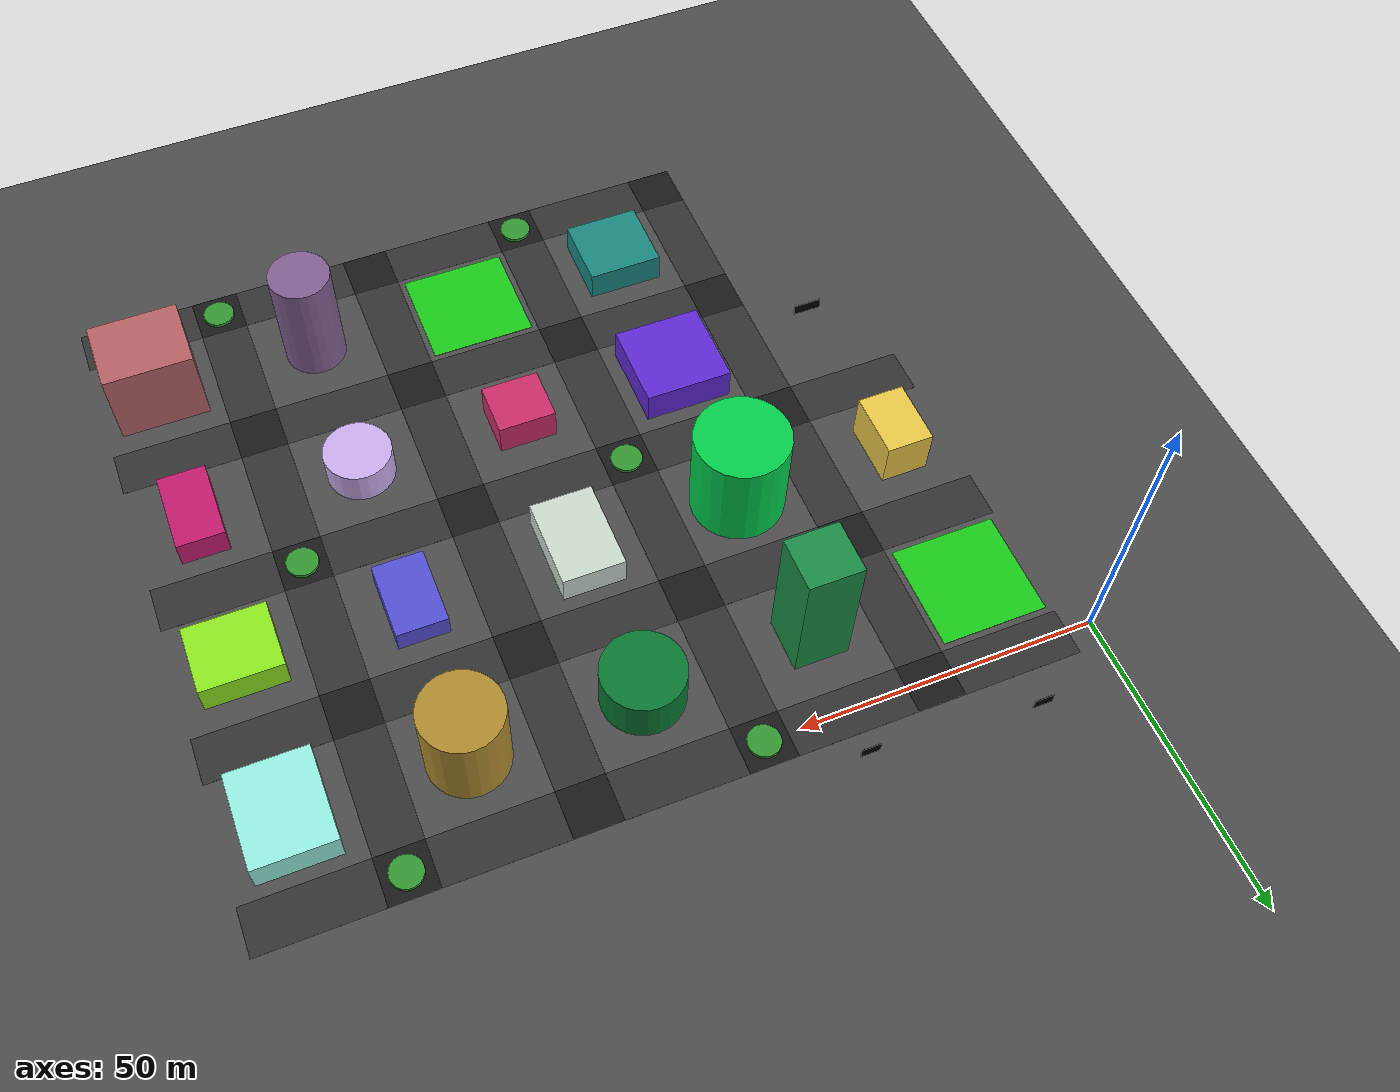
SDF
<sdf version="1.8">
 <world name="urban_city_rich">
  <model name="ground_plane">
   <static>true</static>
   <link name="link">
    <collision name="collision">
     <geometry><plane><normal>0 0 1</normal><size>200 200</size></plane></geometry>
     <surface><friction><ode><mu>100</mu><mu2>50</mu2></ode></friction></surface>
    </collision>
    <visual name="visual">
     <geometry><plane><normal>0 0 1</normal><size>200 200</size></plane></geometry>
     <material><ambient>0.3 0.3 0.3 1</ambient><diffuse>0.3 0.3 0.3 1</diffuse></material>
    </visual>
   </link>
  </model>
  <model name="door_28">
   <static>true</static>
   <pose>14.0 -74.76524444241565 1.0 0 0 0</pose>
   <link name="link">
    <visual name="vis">
     <geometry><box><size>4.9298552917714815 0.2 2.0</size></box></geometry>
     <material><ambient>0 0 0 1</ambient><diffuse>0 0 0 1</diffuse></material>
    </visual>
   </link>
  </model>
  <model name="road_h_0_-2">
   <static>true</static>
   <pose>14.0 -56.0 0.01 0 0 0</pose>
   <link name="link">
    <visual name="vis">
     <geometry><box><size>20.0 8.0 0.02</size></box></geometry>
     <material><ambient>0.2 0.2 0.2 1</ambient><diffuse>0.2 0.2 0.2 1</diffuse></material>
    </visual>
   </link>
  </model>
  <model name="bldg_29">
   <static>true</static>
   <pose>14.0 -42.0 4.146371214015269 0 0 0</pose>
   <link name="link">
    <collision name="col">
     <geometry><box><size>8.01724302681141 11.123374060702506 8.292742428030538</size></box></geometry>
    </collision>
    <visual name="vis">
     <geometry><box><size>8.01724302681141 11.123374060702506 8.292742428030538</size></box></geometry>
     <material>
      <ambient>0.9265180735593334 0.7851293567941215 0.2852492289469203 1</ambient>
      <diffuse>0.9265180735593334 0.7851293567941215 0.2852492289469203 1</diffuse>
     </material>
    </visual>
   </link>
  </model>
  <model name="door_29">
   <static>true</static>
   <pose>14.0 -47.66168703035125 1.0 0 0 0</pose>
   <link name="link">
    <visual name="vis">
     <geometry><box><size>2.67241434227047 0.2 2.0</size></box></geometry>
     <material><ambient>0 0 0 1</ambient><diffuse>0 0 0 1</diffuse></material>
    </visual>
   </link>
  </model>
  <model name="road_h_0_-1">
   <static>true</static>
   <pose>14.0 -28.0 0.01 0 0 0</pose>
   <link name="link">
    <visual name="vis">
     <geometry><box><size>20.0 8.0 0.02</size></box></geometry>
     <material><ambient>0.2 0.2 0.2 1</ambient><diffuse>0.2 0.2 0.2 1</diffuse></material>
    </visual>
   </link>
  </model>
  <model name="park_0_-1">
   <static>true</static>
   <pose>14.0 -14.0 0.05 0 0 0</pose>
   <link name="link">
    <visual name="vis">
     <geometry><box><size>18.0 18.0 0.1</size></box></geometry>
     <material><ambient>0.1 0.8 0.1 1</ambient><diffuse>0.1 0.8 0.1 1</diffuse></material>
    </visual>
   </link>
  </model>
  <model name="road_h_0_0">
   <static>true</static>
   <pose>14.0 0.0 0.01 0 0 0</pose>
   <link name="link">
    <visual name="vis">
     <geometry><box><size>20.0 8.0 0.02</size></box></geometry>
     <material><ambient>0.2 0.2 0.2 1</ambient><diffuse>0.2 0.2 0.2 1</diffuse></material>
    </visual>
   </link>
  </model>
  <model name="door_30">
   <static>true</static>
   <pose>14.0 9.666066831970802 1.0 0 0 0</pose>
   <link name="link">
    <visual name="vis">
     <geometry><box><size>3.247202395771133 0.2 2.0</size></box></geometry>
     <material><ambient>0 0 0 1</ambient><diffuse>0 0 0 1</diffuse></material>
    </visual>
   </link>
  </model>
  <model name="road_inter_1_-4">
   <static>true</static>
   <pose>28.0 -112.0 0.01 0 0 0</pose>
   <link name="link">
    <visual name="vis">
     <geometry><box><size>8.0 8.0 0.02</size></box></geometry>
     <material><ambient>0.1 0.1 0.1 1</ambient><diffuse>0.1 0.1 0.1 1</diffuse></material>
    </visual>
   </link>
  </model>
  <model name="road_h_1_-4">
   <static>true</static>
   <pose>42.0 -112.0 0.01 0 0 0</pose>
   <link name="link">
    <visual name="vis">
     <geometry><box><size>20.0 8.0 0.02</size></box></geometry>
     <material><ambient>0.2 0.2 0.2 1</ambient><diffuse>0.2 0.2 0.2 1</diffuse></material>
    </visual>
   </link>
  </model>
  <model name="road_v_1_-4">
   <static>true</static>
   <pose>28.0 -98.0 0.01 0 0 0</pose>
   <link name="link">
    <visual name="vis">
     <geometry><box><size>8.0 20.0 0.02</size></box></geometry>
     <material><ambient>0.2 0.2 0.2 1</ambient><diffuse>0.2 0.2 0.2 1</diffuse></material>
    </visual>
   </link>
  </model>
  <model name="bldg_35">
   <static>true</static>
   <pose>42.0 -98.0 2.593154568842464 0 0 0</pose>
   <link name="link">
    <collision name="col">
     <geometry><box><size>12.969274043944743 12.503949165111568 5.186309137684928</size></box></geometry>
    </collision>
    <visual name="vis">
     <geometry><box><size>12.969274043944743 12.503949165111568 5.186309137684928</size></box></geometry>
     <material>
      <ambient>0.09998124892458848 0.5376344041016273 0.5058846940487653 1</ambient>
      <diffuse>0.09998124892458848 0.5376344041016273 0.5058846940487653 1</diffuse>
     </material>
    </visual>
   </link>
  </model>
  <model name="door_35">
   <static>true</static>
   <pose>42.0 -104.35197458255578 1.0 0 0 0</pose>
   <link name="link">
    <visual name="vis">
     <geometry><box><size>4.323091347981581 0.2 2.0</size></box></geometry>
     <material><ambient>0 0 0 1</ambient><diffuse>0 0 0 1</diffuse></material>
    </visual>
   </link>
  </model>
  <model name="road_inter_1_-3">
   <static>true</static>
   <pose>28.0 -84.0 0.01 0 0 0</pose>
   <link name="link">
    <visual name="vis">
     <geometry><box><size>8.0 8.0 0.02</size></box></geometry>
     <material><ambient>0.1 0.1 0.1 1</ambient><diffuse>0.1 0.1 0.1 1</diffuse></material>
    </visual>
   </link>
  </model>
  <model name="road_h_1_-3">
   <static>true</static>
   <pose>42.0 -84.0 0.01 0 0 0</pose>
   <link name="link">
    <visual name="vis">
     <geometry><box><size>20.0 8.0 0.02</size></box></geometry>
     <material><ambient>0.2 0.2 0.2 1</ambient><diffuse>0.2 0.2 0.2 1</diffuse></material>
    </visual>
   </link>
  </model>
  <model name="road_v_1_-3">
   <static>true</static>
   <pose>28.0 -70.0 0.01 0 0 0</pose>
   <link name="link">
    <visual name="vis">
     <geometry><box><size>8.0 20.0 0.02</size></box></geometry>
     <material><ambient>0.2 0.2 0.2 1</ambient><diffuse>0.2 0.2 0.2 1</diffuse></material>
    </visual>
   </link>
  </model>
  <model name="bldg_36">
   <static>true</static>
   <pose>42.0 -70.0 2.8998890669905637 0 0 0</pose>
   <link name="link">
    <collision name="col">
     <geometry><box><size>15.046913389491516 15.034161939876341 5.799778133981127</size></box></geometry>
    </collision>
    <visual name="vis">
     <geometry><box><size>15.046913389491516 15.034161939876341 5.799778133981127</size></box></geometry>
     <material>
      <ambient>0.36952708873888396 0.15774683235723197 0.833744954639807 1</ambient>
      <diffuse>0.36952708873888396 0.15774683235723197 0.833744954639807 1</diffuse>
     </material>
    </visual>
   </link>
  </model>
  <model name="door_36">
   <static>true</static>
   <pose>42.0 -77.61708096993817 1.0 0 0 0</pose>
   <link name="link">
    <visual name="vis">
     <geometry><box><size>5.015637796497172 0.2 2.0</size></box></geometry>
     <material><ambient>0 0 0 1</ambient><diffuse>0 0 0 1</diffuse></material>
    </visual>
   </link>
  </model>
  <model name="road_inter_1_-2">
   <static>true</static>
   <pose>28.0 -56.0 0.01 0 0 0</pose>
   <link name="link">
    <visual name="vis">
     <geometry><box><size>8.0 8.0 0.02</size></box></geometry>
     <material><ambient>0.1 0.1 0.1 1</ambient><diffuse>0.1 0.1 0.1 1</diffuse></material>
    </visual>
   </link>
  </model>
  <model name="road_h_1_-2">
   <static>true</static>
   <pose>42.0 -56.0 0.01 0 0 0</pose>
   <link name="link">
    <visual name="vis">
     <geometry><box><size>20.0 8.0 0.02</size></box></geometry>
     <material><ambient>0.2 0.2 0.2 1</ambient><diffuse>0.2 0.2 0.2 1</diffuse></material>
    </visual>
   </link>
  </model>
  <model name="road_v_1_-2">
   <static>true</static>
   <pose>28.0 -42.0 0.01 0 0 0</pose>
   <link name="link">
    <visual name="vis">
     <geometry><box><size>8.0 20.0 0.02</size></box></geometry>
     <material><ambient>0.2 0.2 0.2 1</ambient><diffuse>0.2 0.2 0.2 1</diffuse></material>
    </visual>
   </link>
  </model>
  <model name="bldg_37">
   <static>true</static>
   <pose>42.0 -42.0 8.616777657259501 0 0 0</pose>
   <link name="link">
    <collision name="col">
     <geometry>
      <cylinder><radius>7.948932254526017</radius><length>17.233555314519002</length></cylinder>
     </geometry>
    </collision>
    <visual name="vis">
     <geometry>
      <cylinder><radius>7.948932254526017</radius><length>17.233555314519002</length></cylinder>
     </geometry>
     <material>
      <ambient>0.007823107152157949 0.8171041351154616 0.2993787521999779 1</ambient>
      <diffuse>0.007823107152157949 0.8171041351154616 0.2993787521999779 1</diffuse>
     </material>
    </visual>
   </link>
  </model>
  <model name="door_37">
   <static>true</static>
   <pose>42.0 -48.71590527084293 1.0 0 0 0</pose>
   <link name="link">
    <visual name="vis">
     <geometry><box><size>5.2992881696840115 0.2 2.0</size></box></geometry>
     <material><ambient>0 0 0 1</ambient><diffuse>0 0 0 1</diffuse></material>
    </visual>
   </link>
  </model>
  <model name="road_inter_1_-1">
   <static>true</static>
   <pose>28.0 -28.0 0.01 0 0 0</pose>
   <link name="link">
    <visual name="vis">
     <geometry><box><size>8.0 8.0 0.02</size></box></geometry>
     <material><ambient>0.1 0.1 0.1 1</ambient><diffuse>0.1 0.1 0.1 1</diffuse></material>
    </visual>
   </link>
  </model>
  <model name="road_h_1_-1">
   <static>true</static>
   <pose>42.0 -28.0 0.01 0 0 0</pose>
   <link name="link">
    <visual name="vis">
     <geometry><box><size>20.0 8.0 0.02</size></box></geometry>
     <material><ambient>0.2 0.2 0.2 1</ambient><diffuse>0.2 0.2 0.2 1</diffuse></material>
    </visual>
   </link>
  </model>
  <model name="road_v_1_-1">
   <static>true</static>
   <pose>28.0 -14.0 0.01 0 0 0</pose>
   <link name="link">
    <visual name="vis">
     <geometry><box><size>8.0 20.0 0.02</size></box></geometry>
     <material><ambient>0.2 0.2 0.2 1</ambient><diffuse>0.2 0.2 0.2 1</diffuse></material>
    </visual>
   </link>
  </model>
  <model name="bldg_38">
   <static>true</static>
   <pose>42.0 -14.0 11.889300039271038 0 0 0</pose>
   <link name="link">
    <collision name="col">
     <geometry><box><size>9.074328915146943 8.923429363352817 23.778600078542077</size></box></geometry>
    </collision>
    <visual name="vis">
     <geometry><box><size>9.074328915146943 8.923429363352817 23.778600078542077</size></box></geometry>
     <material>
      <ambient>0.10703597770941764 0.5532236408848159 0.2723482123148163 1</ambient>
      <diffuse>0.10703597770941764 0.5532236408848159 0.2723482123148163 1</diffuse>
     </material>
    </visual>
   </link>
  </model>
  <model name="door_38">
   <static>true</static>
   <pose>42.0 -18.56171468167641 1.0 0 0 0</pose>
   <link name="link">
    <visual name="vis">
     <geometry><box><size>3.024776305048981 0.2 2.0</size></box></geometry>
     <material><ambient>0 0 0 1</ambient><diffuse>0 0 0 1</diffuse></material>
    </visual>
   </link>
  </model>
  <model name="road_inter_1_0">
   <static>true</static>
   <pose>28.0 0.0 0.01 0 0 0</pose>
   <link name="link">
    <visual name="vis">
     <geometry><box><size>8.0 8.0 0.02</size></box></geometry>
     <material><ambient>0.1 0.1 0.1 1</ambient><diffuse>0.1 0.1 0.1 1</diffuse></material>
    </visual>
   </link>
  </model>
  <model name="road_h_1_0">
   <static>true</static>
   <pose>42.0 0.0 0.01 0 0 0</pose>
   <link name="link">
    <visual name="vis">
     <geometry><box><size>20.0 8.0 0.02</size></box></geometry>
     <material><ambient>0.2 0.2 0.2 1</ambient><diffuse>0.2 0.2 0.2 1</diffuse></material>
    </visual>
   </link>
  </model>
  <model name="door_39">
   <static>true</static>
   <pose>42.0 7.3630481644596815 1.0 0 0 0</pose>
   <link name="link">
    <visual name="vis">
     <geometry><box><size>3.209592832873208 0.2 2.0</size></box></geometry>
     <material><ambient>0 0 0 1</ambient><diffuse>0 0 0 1</diffuse></material>
    </visual>
   </link>
  </model>
  <model name="road_inter_2_-4">
   <static>true</static>
   <pose>56.0 -112.0 0.01 0 0 0</pose>
   <link name="link">
    <visual name="vis">
     <geometry><box><size>8.0 8.0 0.02</size></box></geometry>
     <material><ambient>0.1 0.1 0.1 1</ambient><diffuse>0.1 0.1 0.1 1</diffuse></material>
    </visual>
   </link>
  </model>
  <model name="roundabout_2_-4">
   <static>true</static>
   <pose>56.0 -112.0 0.3 0 0 0</pose>
   <link name="link">
    <collision name="col">
     <geometry><cylinder><radius>2.6666666666666665</radius><length>0.6</length></cylinder></geometry>
    </collision>
    <visual name="vis">
     <geometry><cylinder><radius>2.6666666666666665</radius><length>0.6</length></cylinder></geometry>
     <material><ambient>0.2 0.6 0.2 1</ambient><diffuse>0.2 0.6 0.2 1</diffuse></material>
    </visual>
   </link>
  </model>
  <model name="road_h_2_-4">
   <static>true</static>
   <pose>70.0 -112.0 0.01 0 0 0</pose>
   <link name="link">
    <visual name="vis">
     <geometry><box><size>20.0 8.0 0.02</size></box></geometry>
     <material><ambient>0.2 0.2 0.2 1</ambient><diffuse>0.2 0.2 0.2 1</diffuse></material>
    </visual>
   </link>
  </model>
  <model name="road_v_2_-4">
   <static>true</static>
   <pose>56.0 -98.0 0.01 0 0 0</pose>
   <link name="link">
    <visual name="vis">
     <geometry><box><size>8.0 20.0 0.02</size></box></geometry>
     <material><ambient>0.2 0.2 0.2 1</ambient><diffuse>0.2 0.2 0.2 1</diffuse></material>
    </visual>
   </link>
  </model>
  <model name="park_2_-4">
   <static>true</static>
   <pose>70.0 -98.0 0.05 0 0 0</pose>
   <link name="link">
    <visual name="vis">
     <geometry><box><size>18.0 18.0 0.1</size></box></geometry>
     <material><ambient>0.1 0.8 0.1 1</ambient><diffuse>0.1 0.8 0.1 1</diffuse></material>
    </visual>
   </link>
  </model>
  <model name="road_inter_2_-3">
   <static>true</static>
   <pose>56.0 -84.0 0.01 0 0 0</pose>
   <link name="link">
    <visual name="vis">
     <geometry><box><size>8.0 8.0 0.02</size></box></geometry>
     <material><ambient>0.1 0.1 0.1 1</ambient><diffuse>0.1 0.1 0.1 1</diffuse></material>
    </visual>
   </link>
  </model>
  <model name="road_h_2_-3">
   <static>true</static>
   <pose>70.0 -84.0 0.01 0 0 0</pose>
   <link name="link">
    <visual name="vis">
     <geometry><box><size>20.0 8.0 0.02</size></box></geometry>
     <material><ambient>0.2 0.2 0.2 1</ambient><diffuse>0.2 0.2 0.2 1</diffuse></material>
    </visual>
   </link>
  </model>
  <model name="road_v_2_-3">
   <static>true</static>
   <pose>56.0 -70.0 0.01 0 0 0</pose>
   <link name="link">
    <visual name="vis">
     <geometry><box><size>8.0 20.0 0.02</size></box></geometry>
     <material><ambient>0.2 0.2 0.2 1</ambient><diffuse>0.2 0.2 0.2 1</diffuse></material>
    </visual>
   </link>
  </model>
  <model name="bldg_44">
   <static>true</static>
   <pose>70.0 -70.0 2.888645733854335 0 0 0</pose>
   <link name="link">
    <collision name="col">
     <geometry><box><size>9.89389865783487 9.300014136803508 5.77729146770867</size></box></geometry>
    </collision>
    <visual name="vis">
     <geometry><box><size>9.89389865783487 9.300014136803508 5.77729146770867</size></box></geometry>
     <material>
      <ambient>0.7998870299068966 0.17705237032038124 0.4122944103537973 1</ambient>
      <diffuse>0.7998870299068966 0.17705237032038124 0.4122944103537973 1</diffuse>
     </material>
    </visual>
   </link>
  </model>
  <model name="door_44">
   <static>true</static>
   <pose>70.0 -74.75000706840174 1.0 0 0 0</pose>
   <link name="link">
    <visual name="vis">
     <geometry><box><size>3.29796621927829 0.2 2.0</size></box></geometry>
     <material><ambient>0 0 0 1</ambient><diffuse>0 0 0 1</diffuse></material>
    </visual>
   </link>
  </model>
  <model name="road_inter_2_-2">
   <static>true</static>
   <pose>56.0 -56.0 0.01 0 0 0</pose>
   <link name="link">
    <visual name="vis">
     <geometry><box><size>8.0 8.0 0.02</size></box></geometry>
     <material><ambient>0.1 0.1 0.1 1</ambient><diffuse>0.1 0.1 0.1 1</diffuse></material>
    </visual>
   </link>
  </model>
  <model name="roundabout_2_-2">
   <static>true</static>
   <pose>56.0 -56.0 0.3 0 0 0</pose>
   <link name="link">
    <collision name="col">
     <geometry><cylinder><radius>2.6666666666666665</radius><length>0.6</length></cylinder></geometry>
    </collision>
    <visual name="vis">
     <geometry><cylinder><radius>2.6666666666666665</radius><length>0.6</length></cylinder></geometry>
     <material><ambient>0.2 0.6 0.2 1</ambient><diffuse>0.2 0.6 0.2 1</diffuse></material>
    </visual>
   </link>
  </model>
  <model name="road_h_2_-2">
   <static>true</static>
   <pose>70.0 -56.0 0.01 0 0 0</pose>
   <link name="link">
    <visual name="vis">
     <geometry><box><size>20.0 8.0 0.02</size></box></geometry>
     <material><ambient>0.2 0.2 0.2 1</ambient><diffuse>0.2 0.2 0.2 1</diffuse></material>
    </visual>
   </link>
  </model>
  <model name="road_v_2_-2">
   <static>true</static>
   <pose>56.0 -42.0 0.01 0 0 0</pose>
   <link name="link">
    <visual name="vis">
     <geometry><box><size>8.0 20.0 0.02</size></box></geometry>
     <material><ambient>0.2 0.2 0.2 1</ambient><diffuse>0.2 0.2 0.2 1</diffuse></material>
    </visual>
   </link>
  </model>
  <model name="bldg_45">
   <static>true</static>
   <pose>70.0 -42.0 2.604846707632623 0 0 0</pose>
   <link name="link">
    <collision name="col">
     <geometry><box><size>10.65748374357143 15.446527088386604 5.209693415265246</size></box></geometry>
    </collision>
    <visual name="vis">
     <geometry><box><size>10.65748374357143 15.446527088386604 5.209693415265246</size></box></geometry>
     <material>
      <ambient>0.8022351389371389 0.8640640283752794 0.810749316574389 1</ambient>
      <diffuse>0.8022351389371389 0.8640640283752794 0.810749316574389 1</diffuse>
     </material>
    </visual>
   </link>
  </model>
  <model name="door_45">
   <static>true</static>
   <pose>70.0 -49.8232635441933 1.0 0 0 0</pose>
   <link name="link">
    <visual name="vis">
     <geometry><box><size>3.5524945811904765 0.2 2.0</size></box></geometry>
     <material><ambient>0 0 0 1</ambient><diffuse>0 0 0 1</diffuse></material>
    </visual>
   </link>
  </model>
  <model name="road_inter_2_-1">
   <static>true</static>
   <pose>56.0 -28.0 0.01 0 0 0</pose>
   <link name="link">
    <visual name="vis">
     <geometry><box><size>8.0 8.0 0.02</size></box></geometry>
     <material><ambient>0.1 0.1 0.1 1</ambient><diffuse>0.1 0.1 0.1 1</diffuse></material>
    </visual>
   </link>
  </model>
  <model name="road_h_2_-1">
   <static>true</static>
   <pose>70.0 -28.0 0.01 0 0 0</pose>
   <link name="link">
    <visual name="vis">
     <geometry><box><size>20.0 8.0 0.02</size></box></geometry>
     <material><ambient>0.2 0.2 0.2 1</ambient><diffuse>0.2 0.2 0.2 1</diffuse></material>
    </visual>
   </link>
  </model>
  <model name="road_v_2_-1">
   <static>true</static>
   <pose>56.0 -14.0 0.01 0 0 0</pose>
   <link name="link">
    <visual name="vis">
     <geometry><box><size>8.0 20.0 0.02</size></box></geometry>
     <material><ambient>0.2 0.2 0.2 1</ambient><diffuse>0.2 0.2 0.2 1</diffuse></material>
    </visual>
   </link>
  </model>
  <model name="bldg_46">
   <static>true</static>
   <pose>70.0 -14.0 4.0919784298073125 0 0 0</pose>
   <link name="link">
    <collision name="col">
     <geometry><cylinder><radius>6.80511275255965</radius><length>8.183956859614625</length></cylinder></geometry>
    </collision>
    <visual name="vis">
     <geometry><cylinder><radius>6.80511275255965</radius><length>8.183956859614625</length></cylinder></geometry>
     <material>
      <ambient>0.03872460766578645 0.47069002108599034 0.19957283002575188 1</ambient>
      <diffuse>0.03872460766578645 0.47069002108599034 0.19957283002575188 1</diffuse>
     </material>
    </visual>
   </link>
  </model>
  <model name="door_46">
   <static>true</static>
   <pose>70.0 -19.630166890387738 1.0 0 0 0</pose>
   <link name="link">
    <visual name="vis">
     <geometry><box><size>4.536741835039767 0.2 2.0</size></box></geometry>
     <material><ambient>0 0 0 1</ambient><diffuse>0 0 0 1</diffuse></material>
    </visual>
   </link>
  </model>
  <model name="road_inter_2_0">
   <static>true</static>
   <pose>56.0 0.0 0.01 0 0 0</pose>
   <link name="link">
    <visual name="vis">
     <geometry><box><size>8.0 8.0 0.02</size></box></geometry>
     <material><ambient>0.1 0.1 0.1 1</ambient><diffuse>0.1 0.1 0.1 1</diffuse></material>
    </visual>
   </link>
  </model>
  <model name="roundabout_2_0">
   <static>true</static>
   <pose>56.0 0.0 0.3 0 0 0</pose>
   <link name="link">
    <collision name="col">
     <geometry><cylinder><radius>2.6666666666666665</radius><length>0.6</length></cylinder></geometry>
    </collision>
    <visual name="vis">
     <geometry><cylinder><radius>2.6666666666666665</radius><length>0.6</length></cylinder></geometry>
     <material><ambient>0.2 0.6 0.2 1</ambient><diffuse>0.2 0.6 0.2 1</diffuse></material>
    </visual>
   </link>
  </model>
  <model name="road_h_2_0">
   <static>true</static>
   <pose>70.0 0.0 0.01 0 0 0</pose>
   <link name="link">
    <visual name="vis">
     <geometry><box><size>20.0 8.0 0.02</size></box></geometry>
     <material><ambient>0.2 0.2 0.2 1</ambient><diffuse>0.2 0.2 0.2 1</diffuse></material>
    </visual>
   </link>
  </model>
  <model name="road_inter_3_-4">
   <static>true</static>
   <pose>84.0 -112.0 0.01 0 0 0</pose>
   <link name="link">
    <visual name="vis">
     <geometry><box><size>8.0 8.0 0.02</size></box></geometry>
     <material><ambient>0.1 0.1 0.1 1</ambient><diffuse>0.1 0.1 0.1 1</diffuse></material>
    </visual>
   </link>
  </model>
  <model name="road_h_3_-4">
   <static>true</static>
   <pose>98.0 -112.0 0.01 0 0 0</pose>
   <link name="link">
    <visual name="vis">
     <geometry><box><size>20.0 8.0 0.02</size></box></geometry>
     <material><ambient>0.2 0.2 0.2 1</ambient><diffuse>0.2 0.2 0.2 1</diffuse></material>
    </visual>
   </link>
  </model>
  <model name="road_v_3_-4">
   <static>true</static>
   <pose>84.0 -98.0 0.01 0 0 0</pose>
   <link name="link">
    <visual name="vis">
     <geometry><box><size>8.0 20.0 0.02</size></box></geometry>
     <material><ambient>0.2 0.2 0.2 1</ambient><diffuse>0.2 0.2 0.2 1</diffuse></material>
    </visual>
   </link>
  </model>
  <model name="bldg_50">
   <static>true</static>
   <pose>98.0 -98.0 9.785450606527043 0 0 0</pose>
   <link name="link">
    <collision name="col">
     <geometry>
      <cylinder><radius>5.2547092567799645</radius><length>19.570901213054086</length></cylinder>
     </geometry>
    </collision>
    <visual name="vis">
     <geometry>
      <cylinder><radius>5.2547092567799645</radius><length>19.570901213054086</length></cylinder>
     </geometry>
     <material>
      <ambient>0.5114230596694781 0.38519543334472717 0.5765880434965995 1</ambient>
      <diffuse>0.5114230596694781 0.38519543334472717 0.5765880434965995 1</diffuse>
     </material>
    </visual>
   </link>
  </model>
  <model name="door_50">
   <static>true</static>
   <pose>98.0 -104.52483541322457 1.0 0 0 0</pose>
   <link name="link">
    <visual name="vis">
     <geometry><box><size>3.5031395045199765 0.2 2.0</size></box></geometry>
     <material><ambient>0 0 0 1</ambient><diffuse>0 0 0 1</diffuse></material>
    </visual>
   </link>
  </model>
  <model name="road_inter_3_-3">
   <static>true</static>
   <pose>84.0 -84.0 0.01 0 0 0</pose>
   <link name="link">
    <visual name="vis">
     <geometry><box><size>8.0 8.0 0.02</size></box></geometry>
     <material><ambient>0.1 0.1 0.1 1</ambient><diffuse>0.1 0.1 0.1 1</diffuse></material>
    </visual>
   </link>
  </model>
  <model name="road_h_3_-3">
   <static>true</static>
   <pose>98.0 -84.0 0.01 0 0 0</pose>
   <link name="link">
    <visual name="vis">
     <geometry><box><size>20.0 8.0 0.02</size></box></geometry>
     <material><ambient>0.2 0.2 0.2 1</ambient><diffuse>0.2 0.2 0.2 1</diffuse></material>
    </visual>
   </link>
  </model>
  <model name="road_v_3_-3">
   <static>true</static>
   <pose>84.0 -70.0 0.01 0 0 0</pose>
   <link name="link">
    <visual name="vis">
     <geometry><box><size>8.0 20.0 0.02</size></box></geometry>
     <material><ambient>0.2 0.2 0.2 1</ambient><diffuse>0.2 0.2 0.2 1</diffuse></material>
    </visual>
   </link>
  </model>
  <model name="bldg_51">
   <static>true</static>
   <pose>98.0 -70.0 2.943865337132311 0 0 0</pose>
   <link name="link">
    <collision name="col">
     <geometry><cylinder><radius>5.74423006181989</radius><length>5.887730674264622</length></cylinder></geometry>
    </collision>
    <visual name="vis">
     <geometry><cylinder><radius>5.74423006181989</radius><length>5.887730674264622</length></cylinder></geometry>
     <material>
      <ambient>0.8065108697001039 0.6868571469145267 0.9402631203975533 1</ambient>
      <diffuse>0.8065108697001039 0.6868571469145267 0.9402631203975533 1</diffuse>
     </material>
    </visual>
   </link>
  </model>
  <model name="door_51">
   <static>true</static>
   <pose>98.0 -76.17968139426634 1.0 0 0 0</pose>
   <link name="link">
    <visual name="vis">
     <geometry><box><size>3.8294867078799264 0.2 2.0</size></box></geometry>
     <material><ambient>0 0 0 1</ambient><diffuse>0 0 0 1</diffuse></material>
    </visual>
   </link>
  </model>
  <model name="road_inter_3_-2">
   <static>true</static>
   <pose>84.0 -56.0 0.01 0 0 0</pose>
   <link name="link">
    <visual name="vis">
     <geometry><box><size>8.0 8.0 0.02</size></box></geometry>
     <material><ambient>0.1 0.1 0.1 1</ambient><diffuse>0.1 0.1 0.1 1</diffuse></material>
    </visual>
   </link>
  </model>
  <model name="road_h_3_-2">
   <static>true</static>
   <pose>98.0 -56.0 0.01 0 0 0</pose>
   <link name="link">
    <visual name="vis">
     <geometry><box><size>20.0 8.0 0.02</size></box></geometry>
     <material><ambient>0.2 0.2 0.2 1</ambient><diffuse>0.2 0.2 0.2 1</diffuse></material>
    </visual>
   </link>
  </model>
  <model name="road_v_3_-2">
   <static>true</static>
   <pose>84.0 -42.0 0.01 0 0 0</pose>
   <link name="link">
    <visual name="vis">
     <geometry><box><size>8.0 20.0 0.02</size></box></geometry>
     <material><ambient>0.2 0.2 0.2 1</ambient><diffuse>0.2 0.2 0.2 1</diffuse></material>
    </visual>
   </link>
  </model>
  <model name="bldg_52">
   <static>true</static>
   <pose>98.0 -42.0 2.046332207671896 0 0 0</pose>
   <link name="link">
    <collision name="col">
     <geometry><box><size>8.559790489010481 13.313901479290179 4.092664415343792</size></box></geometry>
    </collision>
    <visual name="vis">
     <geometry><box><size>8.559790489010481 13.313901479290179 4.092664415343792</size></box></geometry>
     <material>
      <ambient>0.3302000360425964 0.31391564505835967 0.8480152795063355 1</ambient>
      <diffuse>0.3302000360425964 0.31391564505835967 0.8480152795063355 1</diffuse>
     </material>
    </visual>
   </link>
  </model>
  <model name="door_52">
   <static>true</static>
   <pose>98.0 -48.75695073964509 1.0 0 0 0</pose>
   <link name="link">
    <visual name="vis">
     <geometry><box><size>2.8532634963368273 0.2 2.0</size></box></geometry>
     <material><ambient>0 0 0 1</ambient><diffuse>0 0 0 1</diffuse></material>
    </visual>
   </link>
  </model>
  <model name="road_inter_3_-1">
   <static>true</static>
   <pose>84.0 -28.0 0.01 0 0 0</pose>
   <link name="link">
    <visual name="vis">
     <geometry><box><size>8.0 8.0 0.02</size></box></geometry>
     <material><ambient>0.1 0.1 0.1 1</ambient><diffuse>0.1 0.1 0.1 1</diffuse></material>
    </visual>
   </link>
  </model>
  <model name="road_h_3_-1">
   <static>true</static>
   <pose>98.0 -28.0 0.01 0 0 0</pose>
   <link name="link">
    <visual name="vis">
     <geometry><box><size>20.0 8.0 0.02</size></box></geometry>
     <material><ambient>0.2 0.2 0.2 1</ambient><diffuse>0.2 0.2 0.2 1</diffuse></material>
    </visual>
   </link>
  </model>
  <model name="road_v_3_-1">
   <static>true</static>
   <pose>84.0 -14.0 0.01 0 0 0</pose>
   <link name="link">
    <visual name="vis">
     <geometry><box><size>8.0 20.0 0.02</size></box></geometry>
     <material><ambient>0.2 0.2 0.2 1</ambient><diffuse>0.2 0.2 0.2 1</diffuse></material>
    </visual>
   </link>
  </model>
  <model name="bldg_53">
   <static>true</static>
   <pose>98.0 -14.0 7.571225040352692 0 0 0</pose>
   <link name="link">
    <collision name="col">
     <geometry>
      <cylinder><radius>6.667571616422919</radius><length>15.142450080705384</length></cylinder>
     </geometry>
    </collision>
    <visual name="vis">
     <geometry>
      <cylinder><radius>6.667571616422919</radius><length>15.142450080705384</length></cylinder>
     </geometry>
     <material>
      <ambient>0.697208414194399 0.5544124776667937 0.19184009299014748 1</ambient>
      <diffuse>0.697208414194399 0.5544124776667937 0.19184009299014748 1</diffuse>
     </material>
    </visual>
   </link>
  </model>
  <model name="door_53">
   <static>true</static>
   <pose>98.0 -19.4047316194296 1.0 0 0 0</pose>
   <link name="link">
    <visual name="vis">
     <geometry><box><size>4.445047744281946 0.2 2.0</size></box></geometry>
     <material><ambient>0 0 0 1</ambient><diffuse>0 0 0 1</diffuse></material>
    </visual>
   </link>
  </model>
  <model name="road_inter_3_0">
   <static>true</static>
   <pose>84.0 0.0 0.01 0 0 0</pose>
   <link name="link">
    <visual name="vis">
     <geometry><box><size>8.0 8.0 0.02</size></box></geometry>
     <material><ambient>0.1 0.1 0.1 1</ambient><diffuse>0.1 0.1 0.1 1</diffuse></material>
    </visual>
   </link>
  </model>
  <model name="road_h_3_0">
   <static>true</static>
   <pose>98.0 0.0 0.01 0 0 0</pose>
   <link name="link">
    <visual name="vis">
     <geometry><box><size>20.0 8.0 0.02</size></box></geometry>
     <material><ambient>0.2 0.2 0.2 1</ambient><diffuse>0.2 0.2 0.2 1</diffuse></material>
    </visual>
   </link>
  </model>
  <model name="road_inter_4_-4">
   <static>true</static>
   <pose>112.0 -112.0 0.01 0 0 0</pose>
   <link name="link">
    <visual name="vis">
     <geometry><box><size>8.0 8.0 0.02</size></box></geometry>
     <material><ambient>0.1 0.1 0.1 1</ambient><diffuse>0.1 0.1 0.1 1</diffuse></material>
    </visual>
   </link>
  </model>
  <model name="roundabout_4_-4">
   <static>true</static>
   <pose>112.0 -112.0 0.3 0 0 0</pose>
   <link name="link">
    <collision name="col">
     <geometry><cylinder><radius>2.6666666666666665</radius><length>0.6</length></cylinder></geometry>
    </collision>
    <visual name="vis">
     <geometry><cylinder><radius>2.6666666666666665</radius><length>0.6</length></cylinder></geometry>
     <material><ambient>0.2 0.6 0.2 1</ambient><diffuse>0.2 0.6 0.2 1</diffuse></material>
    </visual>
   </link>
  </model>
  <model name="road_h_4_-4">
   <static>true</static>
   <pose>126.0 -112.0 0.01 0 0 0</pose>
   <link name="link">
    <visual name="vis">
     <geometry><box><size>20.0 8.0 0.02</size></box></geometry>
     <material><ambient>0.2 0.2 0.2 1</ambient><diffuse>0.2 0.2 0.2 1</diffuse></material>
    </visual>
   </link>
  </model>
  <model name="road_v_4_-4">
   <static>true</static>
   <pose>112.0 -98.0 0.01 0 0 0</pose>
   <link name="link">
    <visual name="vis">
     <geometry><box><size>8.0 20.0 0.02</size></box></geometry>
     <material><ambient>0.2 0.2 0.2 1</ambient><diffuse>0.2 0.2 0.2 1</diffuse></material>
    </visual>
   </link>
  </model>
  <model name="bldg_58">
   <static>true</static>
   <pose>126.0 -98.0 7.054161683800891 0 0 0</pose>
   <link name="link">
    <collision name="col">
     <geometry><box><size>15.089095272407853 12.605367195274546 14.108323367601782</size></box></geometry>
    </collision>
    <visual name="vis">
     <geometry><box><size>15.089095272407853 12.605367195274546 14.108323367601782</size></box></geometry>
     <material>
      <ambient>0.7183459154989886 0.3839784673927513 0.3996528628765377 1</ambient>
      <diffuse>0.7183459154989886 0.3839784673927513 0.3996528628765377 1</diffuse>
     </material>
    </visual>
   </link>
  </model>
  <model name="door_58">
   <static>true</static>
   <pose>126.0 -104.40268359763726 1.0 0 0 0</pose>
   <link name="link">
    <visual name="vis">
     <geometry><box><size>5.029698424135951 0.2 2.0</size></box></geometry>
     <material><ambient>0 0 0 1</ambient><diffuse>0 0 0 1</diffuse></material>
    </visual>
   </link>
  </model>
  <model name="road_inter_4_-3">
   <static>true</static>
   <pose>112.0 -84.0 0.01 0 0 0</pose>
   <link name="link">
    <visual name="vis">
     <geometry><box><size>8.0 8.0 0.02</size></box></geometry>
     <material><ambient>0.1 0.1 0.1 1</ambient><diffuse>0.1 0.1 0.1 1</diffuse></material>
    </visual>
   </link>
  </model>
  <model name="road_h_4_-3">
   <static>true</static>
   <pose>126.0 -84.0 0.01 0 0 0</pose>
   <link name="link">
    <visual name="vis">
     <geometry><box><size>20.0 8.0 0.02</size></box></geometry>
     <material><ambient>0.2 0.2 0.2 1</ambient><diffuse>0.2 0.2 0.2 1</diffuse></material>
    </visual>
   </link>
  </model>
  <model name="road_v_4_-3">
   <static>true</static>
   <pose>112.0 -70.0 0.01 0 0 0</pose>
   <link name="link">
    <visual name="vis">
     <geometry><box><size>8.0 20.0 0.02</size></box></geometry>
     <material><ambient>0.2 0.2 0.2 1</ambient><diffuse>0.2 0.2 0.2 1</diffuse></material>
    </visual>
   </link>
  </model>
  <model name="bldg_59">
   <static>true</static>
   <pose>126.0 -70.0 2.484087016667676 0 0 0</pose>
   <link name="link">
    <collision name="col">
     <geometry><box><size>8.044358545104254 14.007715812947783 4.968174033335352</size></box></geometry>
    </collision>
    <visual name="vis">
     <geometry><box><size>8.044358545104254 14.007715812947783 4.968174033335352</size></box></geometry>
     <material>
      <ambient>0.7700461885740251 0.10658729656353894 0.4251461939427341 1</ambient>
      <diffuse>0.7700461885740251 0.10658729656353894 0.4251461939427341 1</diffuse>
     </material>
    </visual>
   </link>
  </model>
  <model name="door_59">
   <static>true</static>
   <pose>126.0 -77.10385790647389 1.0 0 0 0</pose>
   <link name="link">
    <visual name="vis">
     <geometry><box><size>2.681452848368085 0.2 2.0</size></box></geometry>
     <material><ambient>0 0 0 1</ambient><diffuse>0 0 0 1</diffuse></material>
    </visual>
   </link>
  </model>
  <model name="road_inter_4_-2">
   <static>true</static>
   <pose>112.0 -56.0 0.01 0 0 0</pose>
   <link name="link">
    <visual name="vis">
     <geometry><box><size>8.0 8.0 0.02</size></box></geometry>
     <material><ambient>0.1 0.1 0.1 1</ambient><diffuse>0.1 0.1 0.1 1</diffuse></material>
    </visual>
   </link>
  </model>
  <model name="roundabout_4_-2">
   <static>true</static>
   <pose>112.0 -56.0 0.3 0 0 0</pose>
   <link name="link">
    <collision name="col">
     <geometry><cylinder><radius>2.6666666666666665</radius><length>0.6</length></cylinder></geometry>
    </collision>
    <visual name="vis">
     <geometry><cylinder><radius>2.6666666666666665</radius><length>0.6</length></cylinder></geometry>
     <material><ambient>0.2 0.6 0.2 1</ambient><diffuse>0.2 0.6 0.2 1</diffuse></material>
    </visual>
   </link>
  </model>
  <model name="road_h_4_-2">
   <static>true</static>
   <pose>126.0 -56.0 0.01 0 0 0</pose>
   <link name="link">
    <visual name="vis">
     <geometry><box><size>20.0 8.0 0.02</size></box></geometry>
     <material><ambient>0.2 0.2 0.2 1</ambient><diffuse>0.2 0.2 0.2 1</diffuse></material>
    </visual>
   </link>
  </model>
  <model name="road_v_4_-2">
   <static>true</static>
   <pose>112.0 -42.0 0.01 0 0 0</pose>
   <link name="link">
    <visual name="vis">
     <geometry><box><size>8.0 20.0 0.02</size></box></geometry>
     <material><ambient>0.2 0.2 0.2 1</ambient><diffuse>0.2 0.2 0.2 1</diffuse></material>
    </visual>
   </link>
  </model>
  <model name="bldg_60">
   <static>true</static>
   <pose>126.0 -42.0 2.7061647842597143 0 0 0</pose>
   <link name="link">
    <collision name="col">
     <geometry><box><size>13.567294211265907 11.716399076594017 5.412329568519429</size></box></geometry>
    </collision>
    <visual name="vis">
     <geometry><box><size>13.567294211265907 11.716399076594017 5.412329568519429</size></box></geometry>
     <material>
      <ambient>0.5574057940333953 0.9174700144554402 0.12135859918938441 1</ambient>
      <diffuse>0.5574057940333953 0.9174700144554402 0.12135859918938441 1</diffuse>
     </material>
    </visual>
   </link>
  </model>
  <model name="door_60">
   <static>true</static>
   <pose>126.0 -47.95819953829701 1.0 0 0 0</pose>
   <link name="link">
    <visual name="vis">
     <geometry><box><size>4.522431403755302 0.2 2.0</size></box></geometry>
     <material><ambient>0 0 0 1</ambient><diffuse>0 0 0 1</diffuse></material>
    </visual>
   </link>
  </model>
  <model name="road_inter_4_-1">
   <static>true</static>
   <pose>112.0 -28.0 0.01 0 0 0</pose>
   <link name="link">
    <visual name="vis">
     <geometry><box><size>8.0 8.0 0.02</size></box></geometry>
     <material><ambient>0.1 0.1 0.1 1</ambient><diffuse>0.1 0.1 0.1 1</diffuse></material>
    </visual>
   </link>
  </model>
  <model name="road_h_4_-1">
   <static>true</static>
   <pose>126.0 -28.0 0.01 0 0 0</pose>
   <link name="link">
    <visual name="vis">
     <geometry><box><size>20.0 8.0 0.02</size></box></geometry>
     <material><ambient>0.2 0.2 0.2 1</ambient><diffuse>0.2 0.2 0.2 1</diffuse></material>
    </visual>
   </link>
  </model>
  <model name="road_v_4_-1">
   <static>true</static>
   <pose>112.0 -14.0 0.01 0 0 0</pose>
   <link name="link">
    <visual name="vis">
     <geometry><box><size>8.0 20.0 0.02</size></box></geometry>
     <material><ambient>0.2 0.2 0.2 1</ambient><diffuse>0.2 0.2 0.2 1</diffuse></material>
    </visual>
   </link>
  </model>
  <model name="bldg_61">
   <static>true</static>
   <pose>126.0 -14.0 2.702124902583397 0 0 0</pose>
   <link name="link">
    <collision name="col">
     <geometry><box><size>13.340621860690824 15.903139624531583 5.404249805166794</size></box></geometry>
    </collision>
    <visual name="vis">
     <geometry><box><size>13.340621860690824 15.903139624531583 5.404249805166794</size></box></geometry>
     <material>
      <ambient>0.5954523184694197 0.9500396084431559 0.891425925810437 1</ambient>
      <diffuse>0.5954523184694197 0.9500396084431559 0.891425925810437 1</diffuse>
     </material>
    </visual>
   </link>
  </model>
  <model name="door_61">
   <static>true</static>
   <pose>126.0 -22.051569812265793 1.0 0 0 0</pose>
   <link name="link">
    <visual name="vis">
     <geometry><box><size>4.446873953563608 0.2 2.0</size></box></geometry>
     <material><ambient>0 0 0 1</ambient><diffuse>0 0 0 1</diffuse></material>
    </visual>
   </link>
  </model>
  <model name="road_inter_4_0">
   <static>true</static>
   <pose>112.0 0.0 0.01 0 0 0</pose>
   <link name="link">
    <visual name="vis">
     <geometry><box><size>8.0 8.0 0.02</size></box></geometry>
     <material><ambient>0.1 0.1 0.1 1</ambient><diffuse>0.1 0.1 0.1 1</diffuse></material>
    </visual>
   </link>
  </model>
  <model name="roundabout_4_0">
   <static>true</static>
   <pose>112.0 0.0 0.3 0 0 0</pose>
   <link name="link">
    <collision name="col">
     <geometry><cylinder><radius>2.6666666666666665</radius><length>0.6</length></cylinder></geometry>
    </collision>
    <visual name="vis">
     <geometry><cylinder><radius>2.6666666666666665</radius><length>0.6</length></cylinder></geometry>
     <material><ambient>0.2 0.6 0.2 1</ambient><diffuse>0.2 0.6 0.2 1</diffuse></material>
    </visual>
   </link>
  </model>
  <model name="road_h_4_0">
   <static>true</static>
   <pose>126.0 0.0 0.01 0 0 0</pose>
   <link name="link">
    <visual name="vis">
     <geometry><box><size>20.0 8.0 0.02</size></box></geometry>
     <material><ambient>0.2 0.2 0.2 1</ambient><diffuse>0.2 0.2 0.2 1</diffuse></material>
    </visual>
   </link>
  </model>
 </world>
</sdf>
